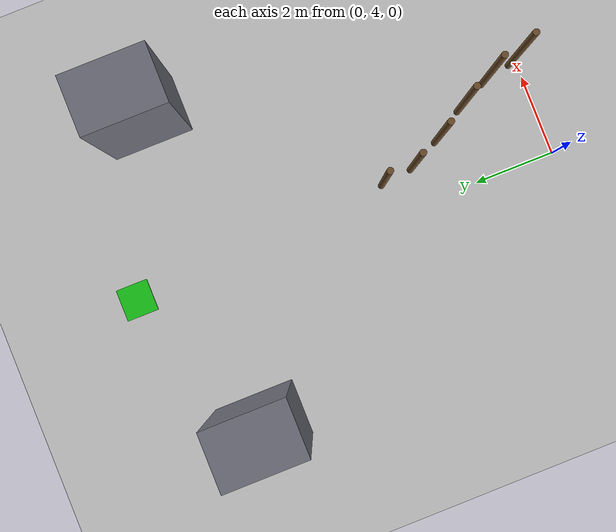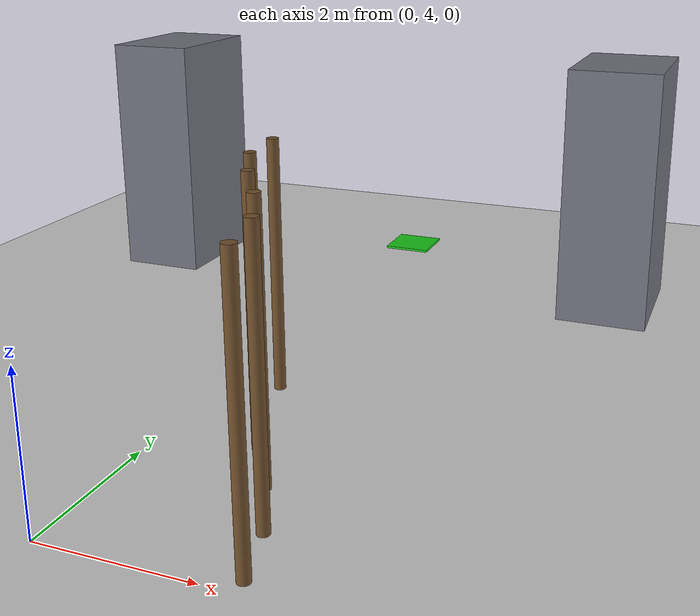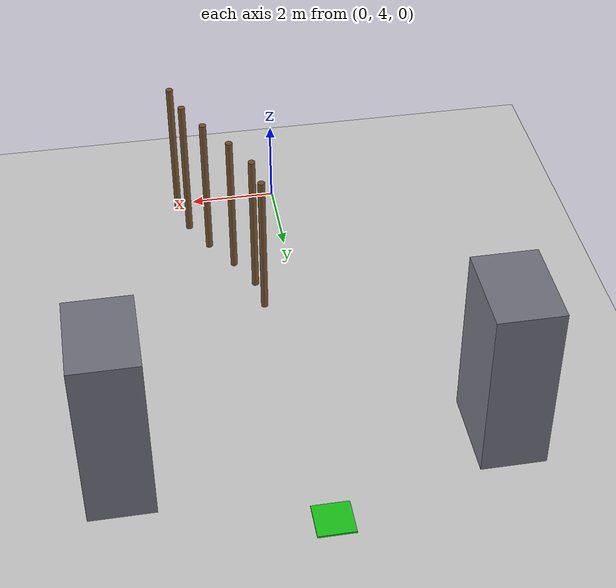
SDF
<sdf version="1.5">
  <world name="default">

    <include>
      <uri>model://sun</uri>
    </include>

    <include>
      <uri>model://ground_plane</uri>
    </include>
    <include>
      <uri>model://asphalt_plane</uri>
    </include>
    <physics name="default_physics" default="0" type="ode">
      <gravity>0 0 -9.8066</gravity>
      <ode>
        <solver>
          <type>quick</type>
          <iters>10</iters>
          <sor>1.3</sor>
          <use_dynamic_moi_rescaling>0</use_dynamic_moi_rescaling>
        </solver>
        <constraints>
          <cfm>0</cfm>
          <erp>0.2</erp>
          <contact_max_correcting_vel>100</contact_max_correcting_vel>
          <contact_surface_layer>0.001</contact_surface_layer>
        </constraints>
      </ode>
      <max_step_size>0.004</max_step_size>
      <real_time_factor>1</real_time_factor>
      <real_time_update_rate>250</real_time_update_rate>
      <magnetic_field>6.0e-6 2.3e-5 -4.2e-5</magnetic_field>
    </physics>

    <model name="d8_curved_pole_00">
      <static>true</static>
      <pose>2.400 4.200 1.75 0 0 0</pose>
      <link name="link">
        <collision name="collision">
          <geometry>
            <cylinder>
              <radius>0.08</radius>
              <length>3.5</length>
            </cylinder>
          </geometry>
        </collision>
        <visual name="visual">
          <geometry>
            <cylinder>
              <radius>0.08</radius>
              <length>3.5</length>
            </cylinder>
          </geometry>
          <material>
            <ambient>0.35 0.25 0.15 1</ambient>
            <diffuse>0.45 0.32 0.18 1</diffuse>
          </material>
        </visual>
      </link>
    </model>

    <model name="d8_curved_pole_01">
      <static>true</static>
      <pose>2.200 5.000 1.75 0 0 0</pose>
      <link name="link">
        <collision name="collision">
          <geometry>
            <cylinder>
              <radius>0.08</radius>
              <length>3.5</length>
            </cylinder>
          </geometry>
        </collision>
        <visual name="visual">
          <geometry>
            <cylinder>
              <radius>0.08</radius>
              <length>3.5</length>
            </cylinder>
          </geometry>
          <material>
            <ambient>0.35 0.25 0.15 1</ambient>
            <diffuse>0.45 0.32 0.18 1</diffuse>
          </material>
        </visual>
      </link>
    </model>

    <model name="d8_curved_pole_02">
      <static>true</static>
      <pose>1.800 5.800 1.75 0 0 0</pose>
      <link name="link">
        <collision name="collision">
          <geometry>
            <cylinder>
              <radius>0.08</radius>
              <length>3.5</length>
            </cylinder>
          </geometry>
        </collision>
        <visual name="visual">
          <geometry>
            <cylinder>
              <radius>0.08</radius>
              <length>3.5</length>
            </cylinder>
          </geometry>
          <material>
            <ambient>0.35 0.25 0.15 1</ambient>
            <diffuse>0.45 0.32 0.18 1</diffuse>
          </material>
        </visual>
      </link>
    </model>

    <model name="d8_curved_pole_03">
      <static>true</static>
      <pose>1.300 6.600 1.75 0 0 0</pose>
      <link name="link">
        <collision name="collision">
          <geometry>
            <cylinder>
              <radius>0.08</radius>
              <length>3.5</length>
            </cylinder>
          </geometry>
        </collision>
        <visual name="visual">
          <geometry>
            <cylinder>
              <radius>0.08</radius>
              <length>3.5</length>
            </cylinder>
          </geometry>
          <material>
            <ambient>0.35 0.25 0.15 1</ambient>
            <diffuse>0.45 0.32 0.18 1</diffuse>
          </material>
        </visual>
      </link>
    </model>

    <model name="d8_curved_pole_04">
      <static>true</static>
      <pose>0.900 7.400 1.75 0 0 0</pose>
      <link name="link">
        <collision name="collision">
          <geometry>
            <cylinder>
              <radius>0.08</radius>
              <length>3.5</length>
            </cylinder>
          </geometry>
        </collision>
        <visual name="visual">
          <geometry>
            <cylinder>
              <radius>0.08</radius>
              <length>3.5</length>
            </cylinder>
          </geometry>
          <material>
            <ambient>0.35 0.25 0.15 1</ambient>
            <diffuse>0.45 0.32 0.18 1</diffuse>
          </material>
        </visual>
      </link>
    </model>

    <model name="d8_curved_pole_05">
      <static>true</static>
      <pose>0.800 8.200 1.75 0 0 0</pose>
      <link name="link">
        <collision name="collision">
          <geometry>
            <cylinder>
              <radius>0.08</radius>
              <length>3.5</length>
            </cylinder>
          </geometry>
        </collision>
        <visual name="visual">
          <geometry>
            <cylinder>
              <radius>0.08</radius>
              <length>3.5</length>
            </cylinder>
          </geometry>
          <material>
            <ambient>0.35 0.25 0.15 1</ambient>
            <diffuse>0.45 0.32 0.18 1</diffuse>
          </material>
        </visual>
      </link>
    </model>

    <model name="d8_left_building">
      <static>true</static>
      <pose>-3.500 13.000 2.000 0.000 0.000 0.000</pose>
      <link name="link">
        <collision name="collision">
          <geometry>
            <box>
              <size>1.4 2.0 4.0</size>
            </box>
          </geometry>
        </collision>
        <visual name="visual">
          <geometry>
            <box>
              <size>1.4 2.0 4.0</size>
            </box>
          </geometry>
          <material>
            <ambient>0.25 0.25 0.28 1</ambient>
            <diffuse>0.45 0.45 0.50 1</diffuse>
          </material>
        </visual>
      </link>
    </model>

    <model name="d8_right_building">
      <static>true</static>
      <pose>4.500 13.000 2.000 0.000 0.000 0.000</pose>
      <link name="link">
        <collision name="collision">
          <geometry>
            <box>
              <size>1.4 2.0 4.0</size>
            </box>
          </geometry>
        </collision>
        <visual name="visual">
          <geometry>
            <box>
              <size>1.4 2.0 4.0</size>
            </box>
          </geometry>
          <material>
            <ambient>0.25 0.25 0.28 1</ambient>
            <diffuse>0.45 0.45 0.50 1</diffuse>
          </material>
        </visual>
      </link>
    </model>

    <model name="d8_delivery_marker">
      <static>true</static>
      <pose>0.400 14.800 0.030 0.000 0.000 0.000</pose>
      <link name="link">
        <visual name="visual">
          <geometry>
            <box>
              <size>0.8 0.8 0.04</size>
            </box>
          </geometry>
          <material>
            <ambient>0.1 0.6 0.1 1</ambient>
            <diffuse>0.1 0.8 0.1 1</diffuse>
          </material>
        </visual>
      </link>
    </model>

  <plugin name="wind_plugin" filename="libgazebo_wind_plugin.so">
      <frameId>base_link</frameId>
      <robotNamespace />
      <windVelocityMean>4.0</windVelocityMean>
      <windVelocityMax>20.0</windVelocityMax>
      <windVelocityVariance>0</windVelocityVariance>
      <windDirectionMean>0 1 0</windDirectionMean>
      <windDirectionVariance>0</windDirectionVariance>
      <windGustStart>0</windGustStart>
      <windGustDuration>0</windGustDuration>
      <windGustVelocityMean>0</windGustVelocityMean>
      <windGustVelocityMax>20.0</windGustVelocityMax>
      <windGustVelocityVariance>0</windGustVelocityVariance>
      <windGustDirectionMean>1 0 0</windGustDirectionMean>
      <windGustDirectionVariance>0</windGustDirectionVariance>
      <windPubTopic>world_wind</windPubTopic>
    <actualWindLogPath>/home/lhc/uav_wind_ws/logs/d8_reference_route/d8_actual_world_wind_live.csv</actualWindLogPath></plugin></world>
</sdf>
